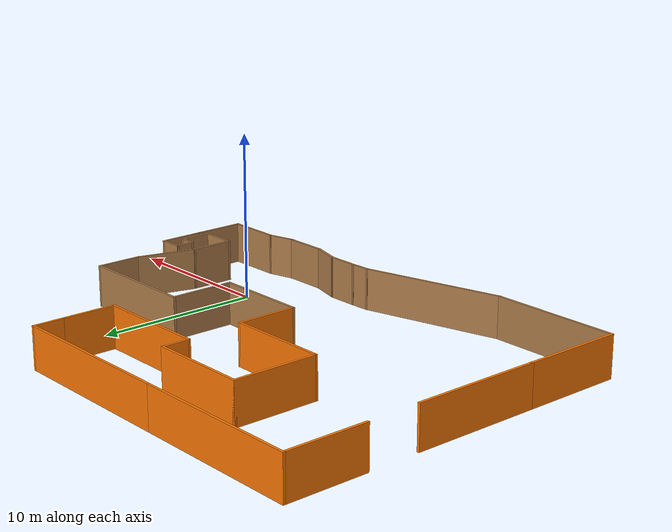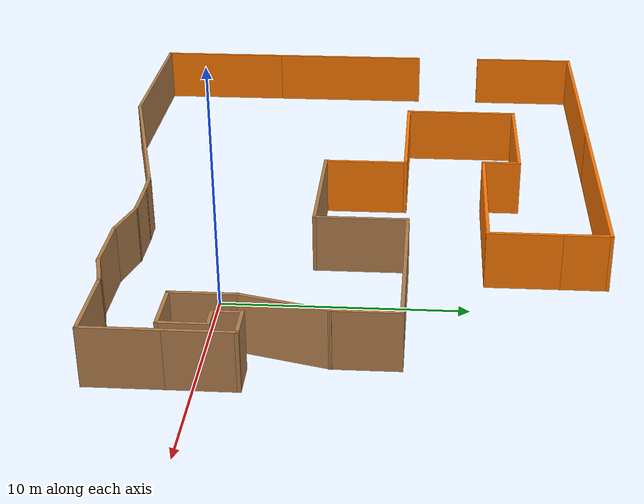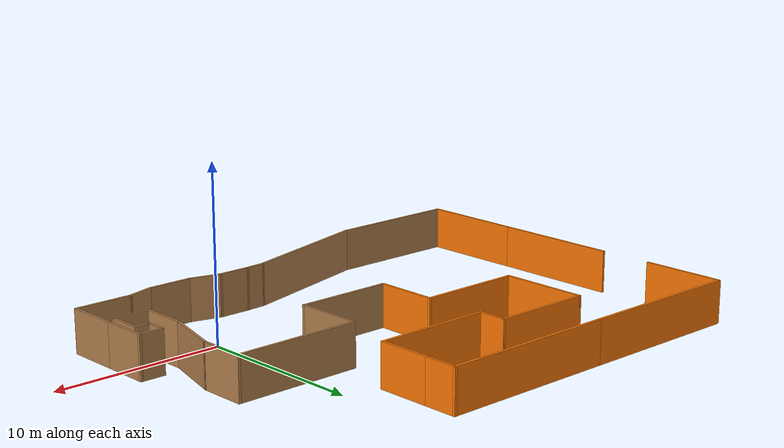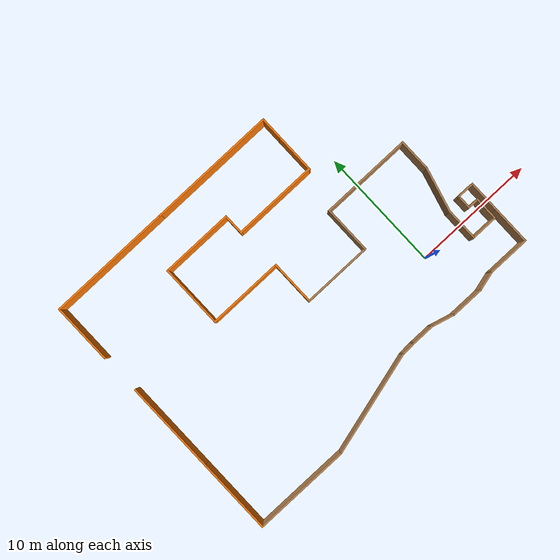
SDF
<?xml version='1.0'?>
<sdf version='1.6'>
  <model name='room'>
    <pose frame=''>-8.23168 4.68232 0 0 -0 0</pose>
    <link name='Wall_0'>
      <collision name='Wall_0_Collision'>
        <geometry>
          <box>
            <size>2 0.15 2.5</size>
          </box>
        </geometry>
        <pose frame=''>0 0 1.25 0 -0 0</pose>
      </collision>
      <visual name='Wall_0_Visual'>
        <pose frame=''>0 0 1.25 0 -0 0</pose>
        <geometry>
          <box>
            <size>2 0.15 2.5</size>
          </box>
        </geometry>
        <material>
          <script>
            <uri>file://media/materials/scripts/gazebo.material</uri>
            <name>Gazebo/Wood</name>
          </script>
          <ambient>1 1 1 1</ambient>
        </material>
        <meta>
          <layer>0</layer>
        </meta>
      </visual>
      <pose frame=''>4.02668 -8.63232 0 0 -0 0</pose>
    </link>
    <link name='Wall_1'>
      <collision name='Wall_1_Collision'>
        <geometry>
          <box>
            <size>2 0.15 2.5</size>
          </box>
        </geometry>
        <pose frame=''>0 0 1.25 0 -0 0</pose>
      </collision>
      <visual name='Wall_1_Visual'>
        <pose frame=''>0 0 1.25 0 -0 0</pose>
        <geometry>
          <box>
            <size>2 0.15 2.5</size>
          </box>
        </geometry>
        <material>
          <script>
            <uri>file://media/materials/scripts/gazebo.material</uri>
            <name>Gazebo/Wood</name>
          </script>
          <ambient>1 1 1 1</ambient>
        </material>
        <meta>
          <layer>0</layer>
        </meta>
      </visual>
      <pose frame=''>5.84516 -8.87173 0 0 0 -0.261799</pose>
    </link>
    <link name='Wall_10'>
      <collision name='Wall_10_Collision'>
        <geometry>
          <box>
            <size>2 0.15 2.5</size>
          </box>
        </geometry>
        <pose frame=''>0 0 1.25 0 -0 0</pose>
      </collision>
      <visual name='Wall_10_Visual'>
        <pose frame=''>0 0 1.25 0 -0 0</pose>
        <geometry>
          <box>
            <size>2 0.15 2.5</size>
          </box>
        </geometry>
        <material>
          <script>
            <uri>file://media/materials/scripts/gazebo.material</uri>
            <name>Gazebo/Wood</name>
          </script>
          <ambient>1 1 1 1</ambient>
        </material>
        <meta>
          <layer>0</layer>
        </meta>
      </visual>
      <pose frame=''>13.7341 -5.02203 0 0 0 -1.5708</pose>
    </link>
    <link name='Wall_11'>
      <collision name='Wall_11_Collision'>
        <geometry>
          <box>
            <size>2.25 0.15 2.5</size>
          </box>
        </geometry>
        <pose frame=''>0 0 1.25 0 -0 0</pose>
      </collision>
      <visual name='Wall_11_Visual'>
        <pose frame=''>0 0 1.25 0 -0 0</pose>
        <geometry>
          <box>
            <size>2.25 0.15 2.5</size>
          </box>
        </geometry>
        <material>
          <script>
            <uri>file://media/materials/scripts/gazebo.material</uri>
            <name>Gazebo/Wood</name>
          </script>
          <ambient>1 1 1 1</ambient>
        </material>
        <meta>
          <layer>0</layer>
        </meta>
      </visual>
      <pose frame=''>12.6841 -5.94703 0 0 -0 3.14159</pose>
    </link>
    <link name='Wall_12'>
      <collision name='Wall_12_Collision'>
        <geometry>
          <box>
            <size>2.75 0.15 2.5</size>
          </box>
        </geometry>
        <pose frame=''>0 0 1.25 0 -0 0</pose>
      </collision>
      <visual name='Wall_12_Visual'>
        <pose frame=''>0 0 1.25 0 -0 0</pose>
        <geometry>
          <box>
            <size>2.75 0.15 2.5</size>
          </box>
        </geometry>
        <material>
          <script>
            <uri>file://media/materials/scripts/gazebo.material</uri>
            <name>Gazebo/Wood</name>
          </script>
          <ambient>1 1 1 1</ambient>
        </material>
        <meta>
          <layer>0</layer>
        </meta>
      </visual>
      <pose frame=''>11.6341 -4.64703 0 0 -0 1.5708</pose>
    </link>
    <link name='Wall_13'>
      <collision name='Wall_13_Collision'>
        <geometry>
          <box>
            <size>3.75 0.15 2.5</size>
          </box>
        </geometry>
        <pose frame=''>0 0 1.25 0 -0 0</pose>
      </collision>
      <visual name='Wall_13_Visual'>
        <pose frame=''>0 0 1.25 0 -0 0</pose>
        <geometry>
          <box>
            <size>3.75 0.15 2.5</size>
          </box>
        </geometry>
        <material>
          <script>
            <uri>file://media/materials/scripts/gazebo.material</uri>
            <name>Gazebo/Wood</name>
          </script>
          <ambient>1 1 1 1</ambient>
        </material>
        <meta>
          <layer>0</layer>
        </meta>
      </visual>
      <pose frame=''>12.1 -1.60836 0 0 -0 1.309</pose>
    </link>
    <link name='Wall_14'>
      <collision name='Wall_14_Collision'>
        <geometry>
          <box>
            <size>2.75 0.15 2.5</size>
          </box>
        </geometry>
        <pose frame=''>0 0 1.25 0 -0 0</pose>
      </collision>
      <visual name='Wall_14_Visual'>
        <pose frame=''>0 0 1.25 0 -0 0</pose>
        <geometry>
          <box>
            <size>2.75 0.15 2.5</size>
          </box>
        </geometry>
        <material>
          <script>
            <uri>file://media/materials/scripts/gazebo.material</uri>
            <name>Gazebo/Wood</name>
          </script>
          <ambient>1 1 1 1</ambient>
        </material>
        <meta>
          <layer>0</layer>
        </meta>
      </visual>
      <pose frame=''>12.5659 1.43031 0 0 -0 1.5708</pose>
    </link>
    <link name='Wall_15'>
      <collision name='Wall_15_Collision'>
        <geometry>
          <box>
            <size>7.5 0.15 2.5</size>
          </box>
        </geometry>
        <pose frame=''>0 0 1.25 0 -0 0</pose>
      </collision>
      <visual name='Wall_15_Visual'>
        <pose frame=''>0 0 1.25 0 -0 0</pose>
        <geometry>
          <box>
            <size>7.5 0.15 2.5</size>
          </box>
        </geometry>
        <material>
          <script>
            <uri>file://media/materials/scripts/gazebo.material</uri>
            <name>Gazebo/Wood</name>
          </script>
          <ambient>1 1 1 1</ambient>
        </material>
        <meta>
          <layer>0</layer>
        </meta>
      </visual>
      <pose frame=''>8.89087 2.73031 0 0 -0 3.14159</pose>
    </link>
    <link name='Wall_16'>
      <collision name='Wall_16_Collision'>
        <geometry>
          <box>
            <size>4 0.15 2.5</size>
          </box>
        </geometry>
        <pose frame=''>0 0 1.25 0 -0 0</pose>
      </collision>
      <visual name='Wall_16_Visual'>
        <pose frame=''>0 0 1.25 0 -0 0</pose>
        <geometry>
          <box>
            <size>4 0.15 2.5</size>
          </box>
        </geometry>
        <material>
          <script>
            <uri>file://media/materials/scripts/gazebo.material</uri>
            <name>Gazebo/Wood</name>
          </script>
          <ambient>1 1 1 1</ambient>
        </material>
        <meta>
          <layer>0</layer>
        </meta>
      </visual>
      <pose frame=''>5.21587 0.805307 0 0 0 -1.5708</pose>
    </link>
    <link name='Wall_17'>
      <collision name='Wall_17_Collision'>
        <geometry>
          <box>
            <size>5.75 0.15 2.5</size>
          </box>
        </geometry>
        <pose frame=''>0 0 1.25 0 -0 0</pose>
      </collision>
      <visual name='Wall_17_Visual'>
        <pose frame=''>0 0 1.25 0 -0 0</pose>
        <geometry>
          <box>
            <size>5.75 0.15 2.5</size>
          </box>
        </geometry>
        <material>
          <script>
            <uri>file://media/materials/scripts/gazebo.material</uri>
            <name>Gazebo/Wood</name>
          </script>
          <ambient>1 1 1 1</ambient>
        </material>
        <meta>
          <layer>0</layer>
        </meta>
      </visual>
      <pose frame=''>2.41587 -1.11969 0 0 -0 3.14159</pose>
    </link>
    <link name='Wall_18'>
      <collision name='Wall_18_Collision'>
        <geometry>
          <box>
            <size>3.75 0.15 2.5</size>
          </box>
        </geometry>
        <pose frame=''>0 0 1.25 0 -0 0</pose>
      </collision>
      <visual name='Wall_18_Visual'>
        <pose frame=''>0 0 1.25 0 -0 0</pose>
        <geometry>
          <box>
            <size>3.75 0.15 2.5</size>
          </box>
        </geometry>
        <material>
          <script>
            <uri>file://media/materials/scripts/gazebo.material</uri>
            <name>Gazebo/Grey</name>
          </script>
          <ambient>0.996078 0.47451 0.0196078 1</ambient>
        </material>
        <meta>
          <layer>0</layer>
        </meta>
      </visual>
      <pose frame=''>-0.384126 0.680307 0 0 -0 1.5708</pose>
    </link>
    <link name='Wall_19'>
      <collision name='Wall_19_Collision'>
        <geometry>
          <box>
            <size>6.25 0.15 2.5</size>
          </box>
        </geometry>
        <pose frame=''>0 0 1.25 0 -0 0</pose>
      </collision>
      <visual name='Wall_19_Visual'>
        <pose frame=''>0 0 1.25 0 -0 0</pose>
        <geometry>
          <box>
            <size>6.25 0.15 2.5</size>
          </box>
        </geometry>
        <material>
          <script>
            <uri>file://media/materials/scripts/gazebo.material</uri>
            <name>Gazebo/Grey</name>
          </script>
          <ambient>0.996078 0.47451 0.0196078 1</ambient>
        </material>
        <meta>
          <layer>0</layer>
        </meta>
      </visual>
      <pose frame=''>-3.43413 2.48031 0 0 -0 3.14159</pose>
    </link>
    <link name='Wall_2'>
      <collision name='Wall_2_Collision'>
        <geometry>
          <box>
            <size>2.75 0.15 2.5</size>
          </box>
        </geometry>
        <pose frame=''>0 0 1.25 0 -0 0</pose>
      </collision>
      <visual name='Wall_2_Visual'>
        <pose frame=''>0 0 1.25 0 -0 0</pose>
        <geometry>
          <box>
            <size>2.75 0.15 2.5</size>
          </box>
        </geometry>
        <material>
          <script>
            <uri>file://media/materials/scripts/gazebo.material</uri>
            <name>Gazebo/Wood</name>
          </script>
          <ambient>1 1 1 1</ambient>
        </material>
        <meta>
          <layer>0</layer>
        </meta>
      </visual>
      <pose frame=''>8.03864 -9.11114 0 0 -0 0</pose>
    </link>
    <link name='Wall_20'>
      <collision name='Wall_20_Collision'>
        <geometry>
          <box>
            <size>5.25 0.15 2.5</size>
          </box>
        </geometry>
        <pose frame=''>0 0 1.25 0 -0 0</pose>
      </collision>
      <visual name='Wall_20_Visual'>
        <pose frame=''>0 0 1.25 0 -0 0</pose>
        <geometry>
          <box>
            <size>5.25 0.15 2.5</size>
          </box>
        </geometry>
        <material>
          <script>
            <uri>file://media/materials/scripts/gazebo.material</uri>
            <name>Gazebo/Grey</name>
          </script>
          <ambient>0.996078 0.47451 0.0196078 1</ambient>
        </material>
        <meta>
          <layer>0</layer>
        </meta>
      </visual>
      <pose frame=''>-6.48412 5.03031 0 0 -0 1.5708</pose>
    </link>
    <link name='Wall_21'>
      <collision name='Wall_21_Collision'>
        <geometry>
          <box>
            <size>6 0.15 2.5</size>
          </box>
        </geometry>
        <pose frame=''>0 0 1.25 0 -0 0</pose>
      </collision>
      <visual name='Wall_21_Visual'>
        <pose frame=''>0 0 1.25 0 -0 0</pose>
        <geometry>
          <box>
            <size>6 0.15 2.5</size>
          </box>
        </geometry>
        <material>
          <script>
            <uri>file://media/materials/scripts/gazebo.material</uri>
            <name>Gazebo/Grey</name>
          </script>
          <ambient>0.996078 0.47451 0.0196078 1</ambient>
        </material>
        <meta>
          <layer>0</layer>
        </meta>
      </visual>
      <pose frame=''>-3.55913 7.58031 0 0 -0 0</pose>
    </link>
    <link name='Wall_22'>
      <collision name='Wall_22_Collision'>
        <geometry>
          <box>
            <size>1.75 0.15 2.5</size>
          </box>
        </geometry>
        <pose frame=''>0 0 1.25 0 -0 0</pose>
      </collision>
      <visual name='Wall_22_Visual'>
        <pose frame=''>0 0 1.25 0 -0 0</pose>
        <geometry>
          <box>
            <size>1.75 0.15 2.5</size>
          </box>
        </geometry>
        <material>
          <script>
            <uri>file://media/materials/scripts/gazebo.material</uri>
            <name>Gazebo/Grey</name>
          </script>
          <ambient>0.996078 0.47451 0.0196078 1</ambient>
        </material>
        <meta>
          <layer>0</layer>
        </meta>
      </visual>
      <pose frame=''>-0.634126 6.78031 0 0 0 -1.5708</pose>
    </link>
    <link name='Wall_23'>
      <collision name='Wall_23_Collision'>
        <geometry>
          <box>
            <size>7 0.15 2.5</size>
          </box>
        </geometry>
        <pose frame=''>0 0 1.25 0 -0 0</pose>
      </collision>
      <visual name='Wall_23_Visual'>
        <pose frame=''>0 0 1.25 0 -0 0</pose>
        <geometry>
          <box>
            <size>7 0.15 2.5</size>
          </box>
        </geometry>
        <material>
          <script>
            <uri>file://media/materials/scripts/gazebo.material</uri>
            <name>Gazebo/Grey</name>
          </script>
          <ambient>0.996078 0.47451 0.0196078 1</ambient>
        </material>
        <meta>
          <layer>0</layer>
        </meta>
      </visual>
      <pose frame=''>2.79087 5.98031 0 0 -0 0</pose>
    </link>
    <link name='Wall_24'>
      <collision name='Wall_24_Collision'>
        <geometry>
          <box>
            <size>3.25 0.15 2.5</size>
          </box>
        </geometry>
        <pose frame=''>0 0 1.25 0 -0 0</pose>
      </collision>
      <visual name='Wall_24_Visual'>
        <pose frame=''>0 0 1.25 0 -0 0</pose>
        <geometry>
          <box>
            <size>3.25 0.15 2.5</size>
          </box>
        </geometry>
        <material>
          <script>
            <uri>file://media/materials/scripts/gazebo.material</uri>
            <name>Gazebo/Grey</name>
          </script>
          <ambient>0.996078 0.47451 0.0196078 1</ambient>
        </material>
        <meta>
          <layer>0</layer>
        </meta>
      </visual>
      <pose frame=''>6.21587 7.53031 0 0 -0 1.5708</pose>
    </link>
    <link name='Wall_25'>
      <collision name='Wall_25_Collision'>
        <geometry>
          <box>
            <size>2 0.15 2.5</size>
          </box>
        </geometry>
        <pose frame=''>0 0 1.25 0 -0 0</pose>
      </collision>
      <visual name='Wall_25_Visual'>
        <pose frame=''>0 0 1.25 0 -0 0</pose>
        <geometry>
          <box>
            <size>2 0.15 2.5</size>
          </box>
        </geometry>
        <material>
          <script>
            <uri>file://media/materials/scripts/gazebo.material</uri>
            <name>Gazebo/Grey</name>
          </script>
          <ambient>0.996078 0.47451 0.0196078 1</ambient>
        </material>
        <meta>
          <layer>0</layer>
        </meta>
      </visual>
      <pose frame=''>6.21587 10.0053 0 0 -0 1.5708</pose>
    </link>
    <link name='Wall_26'>
      <collision name='Wall_26_Collision'>
        <geometry>
          <box>
            <size>10.5 0.15 2.5</size>
          </box>
        </geometry>
        <pose frame=''>0 0 1.25 0 -0 0</pose>
      </collision>
      <visual name='Wall_26_Visual'>
        <pose frame=''>0 0 1.25 0 -0 0</pose>
        <geometry>
          <box>
            <size>10.5 0.15 2.5</size>
          </box>
        </geometry>
        <material>
          <script>
            <uri>file://media/materials/scripts/gazebo.material</uri>
            <name>Gazebo/Grey</name>
          </script>
          <ambient>0.996078 0.47451 0.0196078 1</ambient>
        </material>
        <meta>
          <layer>0</layer>
        </meta>
      </visual>
      <pose frame=''>1.04087 10.9303 0 0 -0 3.14159</pose>
    </link>
    <link name='Wall_27'>
      <collision name='Wall_27_Collision'>
        <geometry>
          <box>
            <size>10.25 0.15 2.5</size>
          </box>
        </geometry>
        <pose frame=''>0 0 1.25 0 -0 0</pose>
      </collision>
      <visual name='Wall_27_Visual'>
        <pose frame=''>0 0 1.25 0 -0 0</pose>
        <geometry>
          <box>
            <size>10.25 0.15 2.5</size>
          </box>
        </geometry>
        <material>
          <script>
            <uri>file://media/materials/scripts/gazebo.material</uri>
            <name>Gazebo/Grey</name>
          </script>
          <ambient>0.996078 0.47451 0.0196078 1</ambient>
        </material>
        <meta>
          <layer>0</layer>
        </meta>
      </visual>
      <pose frame=''>-9.18413 10.9303 0 0 -0 3.14159</pose>
    </link>
    <link name='Wall_28'>
      <collision name='Wall_28_Collision'>
        <geometry>
          <box>
            <size>5 0.15 2.5</size>
          </box>
        </geometry>
        <pose frame=''>0 0 1.25 0 -0 0</pose>
      </collision>
      <visual name='Wall_28_Visual'>
        <pose frame=''>0 0 1.25 0 -0 0</pose>
        <geometry>
          <box>
            <size>5 0.15 2.5</size>
          </box>
        </geometry>
        <material>
          <script>
            <uri>file://media/materials/scripts/gazebo.material</uri>
            <name>Gazebo/Grey</name>
          </script>
          <ambient>0.996078 0.47451 0.0196078 1</ambient>
        </material>
        <meta>
          <layer>0</layer>
        </meta>
      </visual>
      <pose frame=''>-14.2341 8.50531 0 0 0 -1.5708</pose>
    </link>
    <link name='Wall_3'>
      <collision name='Wall_3_Collision'>
        <geometry>
          <box>
            <size>1.75 0.15 2.5</size>
          </box>
        </geometry>
        <pose frame=''>0 0 1.25 0 -0 0</pose>
      </collision>
      <visual name='Wall_3_Visual'>
        <pose frame=''>0 0 1.25 0 -0 0</pose>
        <geometry>
          <box>
            <size>1.75 0.15 2.5</size>
          </box>
        </geometry>
        <material>
          <script>
            <uri>file://media/materials/scripts/gazebo.material</uri>
            <name>Gazebo/Wood</name>
          </script>
          <ambient>1 1 1 1</ambient>
        </material>
        <meta>
          <layer>0</layer>
        </meta>
      </visual>
      <pose frame=''>10.1114 -8.90408 0 0 -0 0.261799</pose>
    </link>
    <link name='Wall_31'>
      <collision name='Wall_31_Collision'>
        <geometry>
          <box>
            <size>7.75 0.15 2.5</size>
          </box>
        </geometry>
        <pose frame=''>0 0 1.25 0 -0 0</pose>
      </collision>
      <visual name='Wall_31_Visual'>
        <pose frame=''>0 0 1.25 0 -0 0</pose>
        <geometry>
          <box>
            <size>7.75 0.15 2.5</size>
          </box>
        </geometry>
        <material>
          <script>
            <uri>file://media/materials/scripts/gazebo.material</uri>
            <name>Gazebo/Grey</name>
          </script>
          <ambient>0.996078 0.47451 0.0196078 1</ambient>
        </material>
        <meta>
          <layer>0</layer>
        </meta>
      </visual>
      <pose frame=''>-14.1926 -1.01345 0 0 0 -1.5708</pose>
    </link>
    <link name='Wall_32'>
      <collision name='Wall_32_Collision'>
        <geometry>
          <box>
            <size>6.25 0.15 2.5</size>
          </box>
        </geometry>
        <pose frame=''>0 0 1.25 0 -0 0</pose>
      </collision>
      <visual name='Wall_32_Visual'>
        <pose frame=''>0 0 1.25 0 -0 0</pose>
        <geometry>
          <box>
            <size>6.25 0.15 2.5</size>
          </box>
        </geometry>
        <material>
          <script>
            <uri>file://media/materials/scripts/gazebo.material</uri>
            <name>Gazebo/Grey</name>
          </script>
          <ambient>0.996078 0.47451 0.0196078 1</ambient>
        </material>
        <meta>
          <layer>0</layer>
        </meta>
      </visual>
      <pose frame=''>-14.1926 -7.86345 0 0 0 -1.5708</pose>
    </link>
    <link name='Wall_33'>
      <collision name='Wall_33_Collision'>
        <geometry>
          <box>
            <size>8 0.15 2.5</size>
          </box>
        </geometry>
        <pose frame=''>0 0 1.25 0 -0 0</pose>
      </collision>
      <visual name='Wall_33_Visual'>
        <pose frame=''>0 0 1.25 0 -0 0</pose>
        <geometry>
          <box>
            <size>8 0.15 2.5</size>
          </box>
        </geometry>
        <material>
          <script>
            <uri>file://media/materials/scripts/gazebo.material</uri>
            <name>Gazebo/Wood</name>
          </script>
          <ambient>1 1 1 1</ambient>
        </material>
        <meta>
          <layer>0</layer>
        </meta>
      </visual>
      <pose frame=''>-10.2676 -10.9135 0 0 -0 0</pose>
    </link>
    <link name='Wall_34'>
      <collision name='Wall_34_Collision'>
        <geometry>
          <box>
            <size>8.75 0.15 2.5</size>
          </box>
        </geometry>
        <pose frame=''>0 0 1.25 0 -0 0</pose>
      </collision>
      <visual name='Wall_34_Visual'>
        <pose frame=''>0 0 1.25 0 -0 0</pose>
        <geometry>
          <box>
            <size>8.75 0.15 2.5</size>
          </box>
        </geometry>
        <material>
          <script>
            <uri>file://media/materials/scripts/gazebo.material</uri>
            <name>Gazebo/Wood</name>
          </script>
          <ambient>1 1 1 1</ambient>
        </material>
        <meta>
          <layer>0</layer>
        </meta>
      </visual>
      <pose frame=''>-2.18909 -9.80053 0 0 -0 0.261799</pose>
    </link>
    <link name='Wall_35'>
      <collision name='Wall_35_Collision'>
        <geometry>
          <box>
            <size>1.28864 0.15 2.5</size>
          </box>
        </geometry>
        <pose frame=''>0 0 1.25 0 -0 0</pose>
      </collision>
      <visual name='Wall_35_Visual'>
        <pose frame=''>0 0 1.25 0 -0 0</pose>
        <geometry>
          <box>
            <size>1.28864 0.15 2.5</size>
          </box>
        </geometry>
        <material>
          <script>
            <uri>file://media/materials/scripts/gazebo.material</uri>
            <name>Gazebo/Wood</name>
          </script>
          <ambient>1 1 1 1</ambient>
        </material>
        <meta>
          <layer>0</layer>
        </meta>
      </visual>
      <pose frame=''>2.53303 -8.65996 0 0 -0 0.048574</pose>
    </link>
    <link name='Wall_4'>
      <collision name='Wall_4_Collision'>
        <geometry>
          <box>
            <size>3.5 0.15 2.5</size>
          </box>
        </geometry>
        <pose frame=''>0 0 1.25 0 -0 0</pose>
      </collision>
      <visual name='Wall_4_Visual'>
        <pose frame=''>0 0 1.25 0 -0 0</pose>
        <geometry>
          <box>
            <size>3.5 0.15 2.5</size>
          </box>
        </geometry>
        <material>
          <script>
            <uri>file://media/materials/scripts/gazebo.material</uri>
            <name>Gazebo/Wood</name>
          </script>
          <ambient>1 1 1 1</ambient>
        </material>
        <meta>
          <layer>0</layer>
        </meta>
      </visual>
      <pose frame=''>12.5591 -8.69703 0 0 -0 0</pose>
    </link>
    <link name='Wall_5'>
      <collision name='Wall_5_Collision'>
        <geometry>
          <box>
            <size>3.25 0.15 2.5</size>
          </box>
        </geometry>
        <pose frame=''>0 0 1.25 0 -0 0</pose>
      </collision>
      <visual name='Wall_5_Visual'>
        <pose frame=''>0 0 1.25 0 -0 0</pose>
        <geometry>
          <box>
            <size>3.25 0.15 2.5</size>
          </box>
        </geometry>
        <material>
          <script>
            <uri>file://media/materials/scripts/gazebo.material</uri>
            <name>Gazebo/Wood</name>
          </script>
          <ambient>1 1 1 1</ambient>
        </material>
        <meta>
          <layer>0</layer>
        </meta>
      </visual>
      <pose frame=''>14.2341 -7.14703 0 0 -0 1.5708</pose>
    </link>
    <link name='Wall_6'>
      <collision name='Wall_6_Collision'>
        <geometry>
          <box>
            <size>2.75 0.15 2.5</size>
          </box>
        </geometry>
        <pose frame=''>0 0 1.25 0 -0 0</pose>
      </collision>
      <visual name='Wall_6_Visual'>
        <pose frame=''>0 0 1.25 0 -0 0</pose>
        <geometry>
          <box>
            <size>2.75 0.15 2.5</size>
          </box>
        </geometry>
        <material>
          <script>
            <uri>file://media/materials/scripts/gazebo.material</uri>
            <name>Gazebo/Wood</name>
          </script>
          <ambient>1 1 1 1</ambient>
        </material>
        <meta>
          <layer>0</layer>
        </meta>
      </visual>
      <pose frame=''>14.2341 -4.29702 0 0 -0 1.5708</pose>
    </link>
    <link name='Wall_7'>
      <collision name='Wall_7_Collision'>
        <geometry>
          <box>
            <size>1.5 0.15 2.5</size>
          </box>
        </geometry>
        <pose frame=''>0 0 1.25 0 -0 0</pose>
      </collision>
      <visual name='Wall_7_Visual'>
        <pose frame=''>0 0 1.25 0 -0 0</pose>
        <geometry>
          <box>
            <size>1.5 0.15 2.5</size>
          </box>
        </geometry>
        <material>
          <script>
            <uri>file://media/materials/scripts/gazebo.material</uri>
            <name>Gazebo/Wood</name>
          </script>
          <ambient>1 1 1 1</ambient>
        </material>
        <meta>
          <layer>0</layer>
        </meta>
      </visual>
      <pose frame=''>13.5591 -2.99702 0 0 -0 3.14159</pose>
    </link>
    <link name='Wall_8'>
      <collision name='Wall_8_Collision'>
        <geometry>
          <box>
            <size>1.25 0.15 2.5</size>
          </box>
        </geometry>
        <pose frame=''>0 0 1.25 0 -0 0</pose>
      </collision>
      <visual name='Wall_8_Visual'>
        <pose frame=''>0 0 1.25 0 -0 0</pose>
        <geometry>
          <box>
            <size>1.25 0.15 2.5</size>
          </box>
        </geometry>
        <material>
          <script>
            <uri>file://media/materials/scripts/gazebo.material</uri>
            <name>Gazebo/Wood</name>
          </script>
          <ambient>1 1 1 1</ambient>
        </material>
        <meta>
          <layer>0</layer>
        </meta>
      </visual>
      <pose frame=''>12.8841 -3.54703 0 0 0 -1.5708</pose>
    </link>
    <link name='Wall_9'>
      <collision name='Wall_9_Collision'>
        <geometry>
          <box>
            <size>1 0.15 2.5</size>
          </box>
        </geometry>
        <pose frame=''>0 0 1.25 0 -0 0</pose>
      </collision>
      <visual name='Wall_9_Visual'>
        <pose frame=''>0 0 1.25 0 -0 0</pose>
        <geometry>
          <box>
            <size>1 0.15 2.5</size>
          </box>
        </geometry>
        <material>
          <script>
            <uri>file://media/materials/scripts/gazebo.material</uri>
            <name>Gazebo/Wood</name>
          </script>
          <ambient>1 1 1 1</ambient>
        </material>
        <meta>
          <layer>0</layer>
        </meta>
      </visual>
      <pose frame=''>13.3091 -4.09703 0 0 -0 0</pose>
    </link>
    <static>1</static>
  </model>
</sdf>
